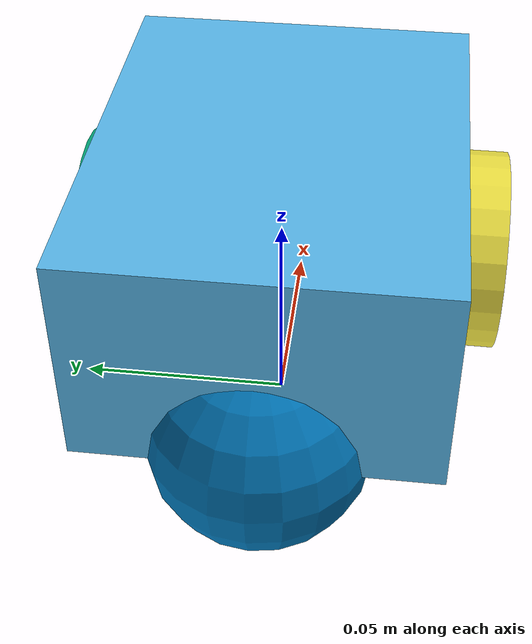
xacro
<?xml version='1.0'?>
<robot xmlns:xacro="http://www.ros.org/wiki/xacro" name="robot_car_mjoc">

  <!-- ====== ARGUMENTOS QUE VIENEN DEL LAUNCH (nuevo) ====== -->
  <xacro:arg name="wheel_radius" default="0.025"/>
  <xacro:arg name="wheel_base"   default="0.0925"/>
  <xacro:arg name="wheel_length" default="0.0125"/>

  <!-- ====== PROPIEDADES (metros) ====== -->
  <!-- Caja: (10,8,5) cm -->
  <xacro:property name="body_x" value="0.10"/>
  <xacro:property name="body_y" value="0.08"/>
  <xacro:property name="body_z" value="0.05"/>

  <!-- Ruedas: ahora vienen del launch en vez de hardcodeadas -->
  <xacro:property name="wheel_r" value="$(arg wheel_radius)"/>  <!-- ← CAMBIADO -->
  <xacro:property name="wheel_l" value="$(arg wheel_length)"/>  <!-- ← CAMBIADO -->

  <!-- Apoyo: radio=2.5 cm -->
  <xacro:property name="caster_r" value="0.025"/>

  <!-- Posición vertical del centro de la rueda -->
  <xacro:property name="wheel_z" value="${wheel_r}"/>

  <!-- Posición del cuerpo (centro) para que el fondo quede a z=0 -->
  <xacro:property name="body_center_z" value="${(body_z/2) + wheel_r}"/>

  <!-- Separación lateral de las ruedas -->
  <xacro:property name="wheel_y" value="${(body_y/2) + (wheel_l/2)}"/>

  <!-- Longitudinal: ruedas hacia la mitad frontal -->
  <xacro:property name="wheel_x" value="0.03"/>

  <!-- Apoyo (caster) hacia atrás -->
  <xacro:property name="caster_x" value="-0.04"/>
  <xacro:property name="caster_z" value="${caster_r}"/>

  <!-- ====== LINKS (sin cambios) ====== -->
  <link name="base_link"/>

  <link name="chassis">
    <visual>
      <origin xyz="0 0 ${body_center_z}" rpy="0 0 0"/>
      <geometry>
        <box size="${body_x} ${body_y} ${body_z}"/>
      </geometry>
    </visual>
    <collision>
      <origin xyz="0 0 ${body_center_z}" rpy="0 0 0"/>
      <geometry>
        <box size="${body_x} ${body_y} ${body_z}"/>
      </geometry>
    </collision>
  </link>

  <link name="wheel_left">
    <visual>
      <origin xyz="0 0 0" rpy="1.5708 0 0"/>
      <geometry>
        <cylinder radius="${wheel_r}" length="${wheel_l}"/>
      </geometry>
    </visual>
    <collision>
      <origin xyz="0 0 0" rpy="1.5708 0 0"/>
      <geometry>
        <cylinder radius="${wheel_r}" length="${wheel_l}"/>
      </geometry>
    </collision>
  </link>

  <link name="wheel_right">
    <visual>
      <origin xyz="0 0 0" rpy="1.5708 0 0"/>
      <geometry>
        <cylinder radius="${wheel_r}" length="${wheel_l}"/>
      </geometry>
    </visual>
    <collision>
      <origin xyz="0 0 0" rpy="1.5708 0 0"/>
      <geometry>
        <cylinder radius="${wheel_r}" length="${wheel_l}"/>
      </geometry>
    </collision>
  </link>

  <link name="caster">
    <visual>
      <origin xyz="0 0 0" rpy="0 0 0"/>
      <geometry>
        <sphere radius="${caster_r}"/>
      </geometry>
    </visual>
    <collision>
      <origin xyz="0 0 0" rpy="0 0 0"/>
      <geometry>
        <sphere radius="${caster_r}"/>
      </geometry>
    </collision>
  </link>

  <!-- ====== JOINTS (sin cambios) ====== -->
  <joint name="base_to_chassis" type="fixed">
    <parent link="base_link"/>
    <child link="chassis"/>
    <origin xyz="0 0 0" rpy="0 0 0"/>
  </joint>

  <joint name="chassis_to_wheel_left" type="continuous">
    <parent link="chassis"/>
    <child link="wheel_left"/>
    <origin xyz="${wheel_x} ${wheel_y} ${wheel_z}" rpy="0 0 0"/>
    <axis xyz="0 1 0"/>
  </joint>

  <joint name="chassis_to_wheel_right" type="continuous">
    <parent link="chassis"/>
    <child link="wheel_right"/>
    <origin xyz="${wheel_x} -${wheel_y} ${wheel_z}" rpy="0 0 0"/>
    <axis xyz="0 1 0"/>
  </joint>

  <joint name="chassis_to_caster" type="fixed">
    <parent link="chassis"/>
    <child link="caster"/>
    <origin xyz="${caster_x} 0 ${caster_z}" rpy="0 0 0"/>
  </joint>

</robot>
